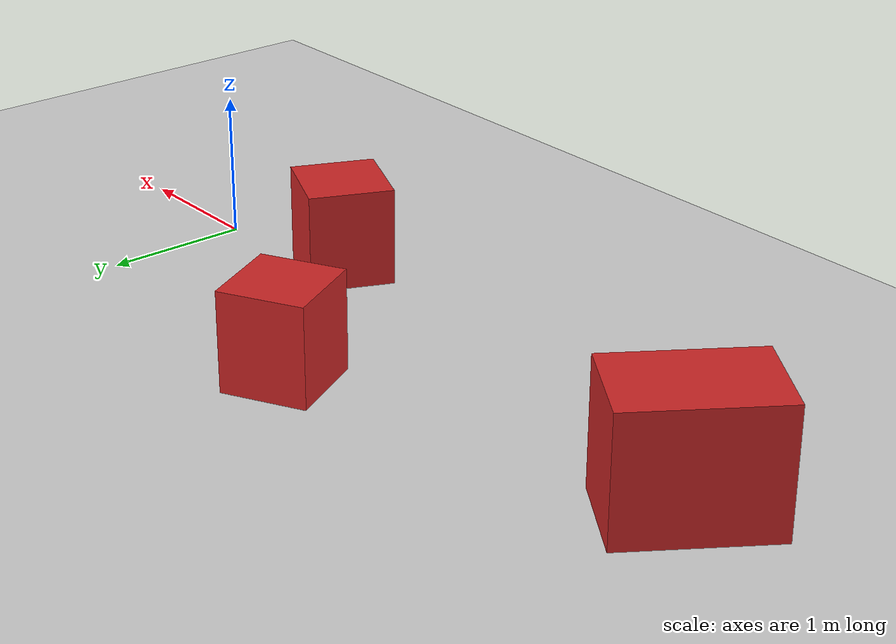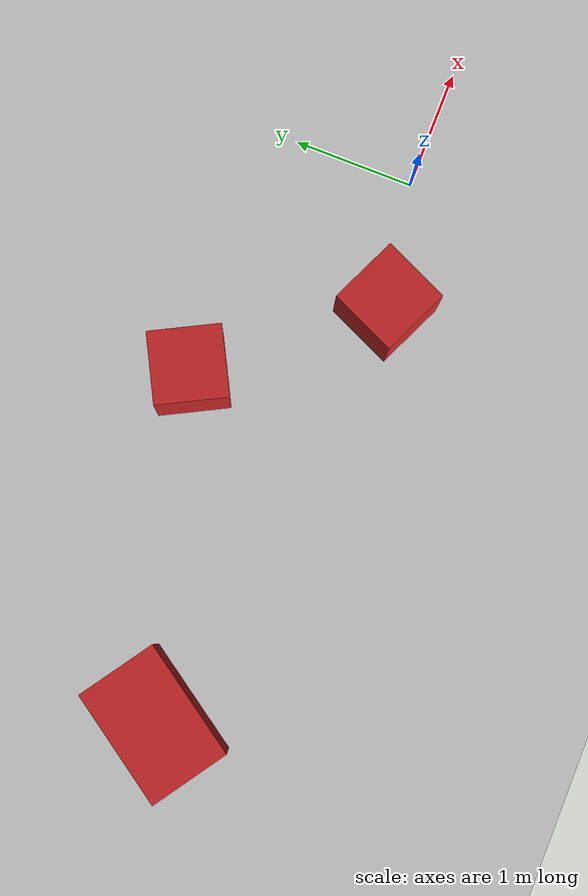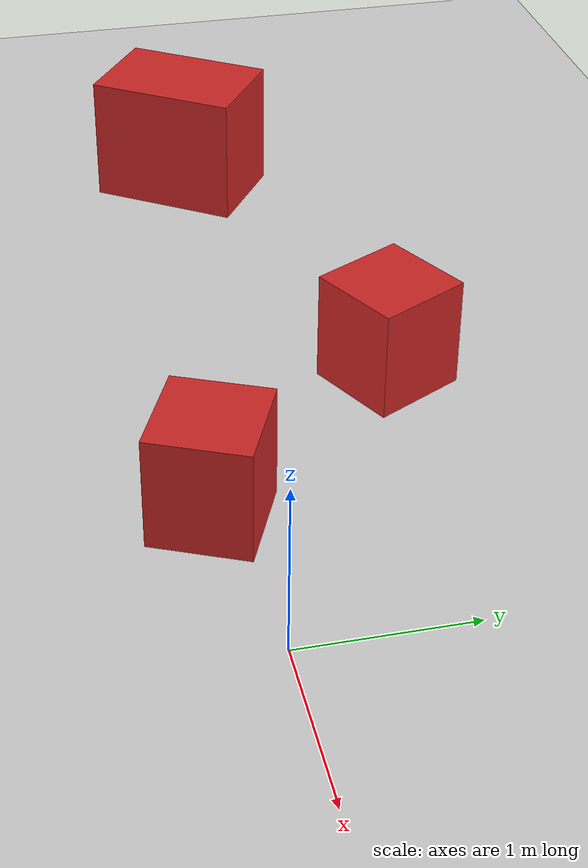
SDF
<sdf version="1.6">
 <world name="default">
  <model name="ground_plane">
   <static>1</static>
   <link name="link">
    <collision name="collision">
     <geometry><plane><normal>0 0 1</normal><size>100 100</size></plane></geometry>
     <surface>
      <contact><collide_bitmask>65535</collide_bitmask></contact>
      <friction><ode><mu>100</mu><mu2>50</mu2></ode></friction>
     </surface>
    </collision>
    <visual name="visual">
     <cast_shadows>0</cast_shadows>
     <geometry><plane><normal>0 0 1</normal><size>100 100</size></plane></geometry>
     <material>
      <script><uri>file://media/materials/scripts/gazebo.material</uri><name>Gazebo/Grey</name></script>
     </material>
    </visual>
   </link>
  </model>
  <model name="unit_box">
   <link name="link">
    <inertial>
     <mass>1</mass>
     <inertia>
      <ixx>0.166667</ixx>
      <ixy>0</ixy>
      <ixz>0</ixz>
      <iyy>0.166667</iyy>
      <iyz>0</iyz>
      <izz>0.166667</izz>
     </inertia>
    </inertial>
    <visual name="visual">
     <geometry><box><size>0.675313 1 0.84475</size></box></geometry>
     <material>
      <script><name>Gazebo/Red</name><uri>file://media/materials/scripts/gazebo.material</uri></script>
      <shader type="pixel"><normal_map>__default__</normal_map></shader>
      <ambient>1 0 0 1</ambient>
      <diffuse>1 0 0 1</diffuse>
      <specular>0.1 0.1 0.1 1</specular>
      <emissive>0 0 0 1</emissive>
     </material>
    </visual>
    <collision name="collision">
     <geometry><box><size>0.675313 1 0.84475</size></box></geometry>
     <surface>
      <friction>
       <ode><mu>1</mu><mu2>1</mu2><fdir1>0 0 0</fdir1><slip1>0</slip1><slip2>0</slip2></ode>
       <torsional>
        <coefficient>1</coefficient>
        <patch_radius>0</patch_radius>
        <surface_radius>0</surface_radius>
        <use_patch_radius>1</use_patch_radius>
        <ode><slip>0</slip></ode>
       </torsional>
      </friction>
      <bounce><restitution_coefficient>0</restitution_coefficient><threshold>1e+06</threshold></bounce>
      <contact>
       <collide_without_contact>0</collide_without_contact>
       <collide_without_contact_bitmask>1</collide_without_contact_bitmask>
       <collide_bitmask>1</collide_bitmask>
       <ode>
        <soft_cfm>0</soft_cfm>
        <soft_erp>0.2</soft_erp>
        <kp>1e+13</kp>
        <kd>1</kd>
        <max_vel>0.01</max_vel>
        <min_depth>0</min_depth>
       </ode>
       <bullet>
        <split_impulse>1</split_impulse>
        <split_impulse_penetration_threshold>-0.01</split_impulse_penetration_threshold>
        <soft_cfm>0</soft_cfm>
        <soft_erp>0.2</soft_erp>
        <kp>1e+13</kp>
        <kd>1</kd>
       </bullet>
      </contact>
     </surface>
    </collision>
   </link>
   <static>0</static>
   <pose>-4.81229 0.307396 0.422375 0 0 -0.594681</pose>
  </model>
  <model name="unit_box_3">
   <link name="link">
    <inertial>
     <mass>1</mass>
     <inertia>
      <ixx>0.166667</ixx>
      <ixy>0</ixy>
      <ixz>0</ixz>
      <iyy>0.166667</iyy>
      <iyz>0</iyz>
      <izz>0.166667</izz>
     </inertia>
    </inertial>
    <visual name="visual">
     <geometry><box><size>0.597837 0.587717 0.68729</size></box></geometry>
     <material>
      <script><name>Gazebo/Red</name><uri>file://media/materials/scripts/gazebo.material</uri></script>
      <shader type="pixel"><normal_map>__default__</normal_map></shader>
      <ambient>1 0 0 1</ambient>
      <diffuse>1 0 0 1</diffuse>
      <specular>0.1 0.1 0.1 1</specular>
      <emissive>0 0 0 1</emissive>
     </material>
    </visual>
    <collision name="collision">
     <geometry><box><size>0.597837 0.587717 0.68729</size></box></geometry>
     <surface>
      <friction>
       <ode><mu>1</mu><mu2>1</mu2><fdir1>0 0 0</fdir1><slip1>0</slip1><slip2>0</slip2></ode>
       <torsional>
        <coefficient>1</coefficient>
        <patch_radius>0</patch_radius>
        <surface_radius>0</surface_radius>
        <use_patch_radius>1</use_patch_radius>
        <ode><slip>0</slip></ode>
       </torsional>
      </friction>
      <bounce><restitution_coefficient>0</restitution_coefficient><threshold>1e+06</threshold></bounce>
      <contact>
       <collide_without_contact>0</collide_without_contact>
       <collide_without_contact_bitmask>1</collide_without_contact_bitmask>
       <collide_bitmask>1</collide_bitmask>
       <ode>
        <soft_cfm>0</soft_cfm>
        <soft_erp>0.2</soft_erp>
        <kp>1e+13</kp>
        <kd>1</kd>
        <max_vel>0.01</max_vel>
        <min_depth>0</min_depth>
       </ode>
       <bullet>
        <split_impulse>1</split_impulse>
        <split_impulse_penetration_threshold>-0.01</split_impulse_penetration_threshold>
        <soft_cfm>0</soft_cfm>
        <soft_erp>0.2</soft_erp>
        <kp>1e+13</kp>
        <kd>1</kd>
       </bullet>
      </contact>
     </surface>
    </collision>
   </link>
   <static>0</static>
   <pose>-1.05955 -0.180039 0.343645 0 0 -0.420452</pose>
  </model>
  <model name="unit_box_3_clone_3">
   <link name="link">
    <inertial>
     <mass>1</mass>
     <inertia>
      <ixx>0.166667</ixx>
      <ixy>0</ixy>
      <ixz>0</ixz>
      <iyy>0.166667</iyy>
      <iyz>0</iyz>
      <izz>0.166667</izz>
     </inertia>
    </inertial>
    <visual name="visual">
     <geometry><box><size>0.597837 0.587718 0.68729</size></box></geometry>
     <material>
      <script><name>Gazebo/Red</name><uri>file://media/materials/scripts/gazebo.material</uri></script>
      <shader type="pixel"><normal_map>__default__</normal_map></shader>
      <ambient>1 0 0 1</ambient>
      <diffuse>1 0 0 1</diffuse>
      <specular>0.1 0.1 0.1 1</specular>
      <emissive>0 0 0 1</emissive>
     </material>
    </visual>
    <collision name="collision">
     <geometry><box><size>0.597837 0.587718 0.68729</size></box></geometry>
     <surface>
      <friction>
       <ode><mu>1</mu><mu2>1</mu2><fdir1>0 0 0</fdir1><slip1>0</slip1><slip2>0</slip2></ode>
       <torsional>
        <coefficient>1</coefficient>
        <patch_radius>0</patch_radius>
        <surface_radius>0</surface_radius>
        <use_patch_radius>1</use_patch_radius>
        <ode><slip>0</slip></ode>
       </torsional>
      </friction>
      <bounce><restitution_coefficient>0</restitution_coefficient><threshold>1e+06</threshold></bounce>
      <contact>
       <collide_without_contact>0</collide_without_contact>
       <collide_without_contact_bitmask>1</collide_without_contact_bitmask>
       <collide_bitmask>1</collide_bitmask>
       <ode>
        <soft_cfm>0</soft_cfm>
        <soft_erp>0.2</soft_erp>
        <kp>1e+13</kp>
        <kd>1</kd>
        <max_vel>0.01</max_vel>
        <min_depth>0</min_depth>
       </ode>
       <bullet>
        <split_impulse>1</split_impulse>
        <split_impulse_penetration_threshold>-0.01</split_impulse_penetration_threshold>
        <soft_cfm>0</soft_cfm>
        <soft_erp>0.2</soft_erp>
        <kp>1e+13</kp>
        <kd>1</kd>
       </bullet>
      </contact>
     </surface>
    </collision>
   </link>
   <static>0</static>
   <pose>-2.14028 1.09401 0.343645 0 -0 -1.0874</pose>
  </model>
 </world>
</sdf>
